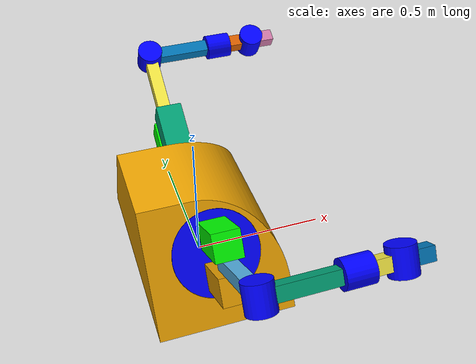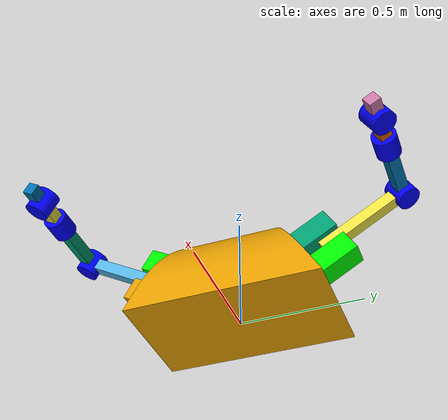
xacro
<?xml version="1.0"?>
<robot name="tutobot" xmlns:xacro="http://www.ros.org/wiki/xacro">

    <xacro:arg name="robot_namespace" default="tutobot"/>

    <link name="$(arg robot_namespace)/dual_base_link">
        <visual>
            <geometry>
                <mesh filename="package://udg_ros_intro/resources/meshes/dualbase.dae"/>
            </geometry>
        </visual>
        <collision>
            <geometry>
                <mesh filename="package://udg_ros_intro/resources/meshes/dualbase.dae"/>
            </geometry>
        </collision>
    </link>

    <!-- Include manipulator -->
    <xacro:include filename="$(find udg_ros_intro)/urdf/tutobot.macro.xacro"/>
    <xacro:arm_namespace prefix="$(arg robot_namespace)_left"/>
    <xacro:arm_namespace prefix="$(arg robot_namespace)_right"/>

    <joint name="$(arg robot_namespace)/fixed_joint_left" type="fixed">
        <parent link="$(arg robot_namespace)/dual_base_link"/>
        <child link="$(arg robot_namespace)_left/base_link"/>
        <origin rpy="-1.0472 0.0 0.0" xyz="0.0 0.18246 0.17679"/>
    </joint>

    <joint name="$(arg robot_namespace)/fixed_joint_right" type="fixed">
        <parent link="$(arg robot_namespace)/dual_base_link"/>
        <child link="$(arg robot_namespace)_right/base_link"/>
        <origin rpy="1.0472 0.0 0.0" xyz="0.0 -0.18246 0.17679"/>
    </joint>

</robot>

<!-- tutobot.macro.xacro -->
<robot xmlns:xacro="http://www.ros.org/wiki/xacro">

    <!-- define colors -->
    <material name="green">
        <color rgba="0 1.0 0 1"/>
    </material>

    <material name="blue">
        <color rgba="0 0 1 1"/>
    </material>

    <xacro:macro name="arm_namespace" params="prefix">

        <link name="${prefix}/base_link">
            <visual>
                <geometry>
                    <cylinder radius="0.16" length="0.1"/>
                </geometry>
                <material name="blue"/>
                <origin xyz="0 0 0.05" rpy="0 0 0"/>
            </visual>
            <collision>
                <geometry>
                    <cylinder radius="0.16" length="0.1"/>
                </geometry>
                <origin xyz="0 0 0.05" rpy="0 0 0"/>
            </collision>
        </link>

        <link name="${prefix}/link1">
            <visual name="left">
                <geometry>
                    <box size="0.1 0.1 0.2"/>
                </geometry>
                <material name="green"/>
                <origin xyz="0 0.075 0" rpy="0 0 0"/>
            </visual>

            <visual name="right">
                <geometry>
                    <box size="0.1 0.1 0.2"/>
                </geometry>
                <origin xyz="0 -0.075 0" rpy="0 0 0"/>
            </visual>

            <collision name="left">
                <geometry>
                    <box size="0.1 0.1 0.2"/>
                </geometry>
                <origin xyz="0 0.075 0" rpy="0 0 0"/>
            </collision>

            <collision name="right">
                <geometry>
                    <box size="0.1 0.1 0.2"/>
                </geometry>
                <origin xyz="0 -0.075 0" rpy="0 0 0"/>
            </collision>
        </link>

        <link name="${prefix}/link2">
            <visual name="bar">
                <geometry>
                    <box size="0.05 0.05 0.4"/>
                </geometry>
                <origin xyz="0.0 0 0.2" rpy="0 0 0"/>
            </visual>

            <collision name="bar">
                <geometry>
                    <box size="0.05 0.05 0.4"/>
                </geometry>
                <origin xyz="0.0 0 0.2" rpy="0 0 0"/>
            </collision>
        </link>

        <link name="${prefix}/link3">
            <visual name="bar">
                <geometry>
                    <box size="0.05 0.05 0.3"/>
                </geometry>
                <origin xyz="0.15 0 0" rpy="0 1.57 0"/>
            </visual>

            <visual name="motor">
                <geometry>
                    <cylinder radius="0.05" length="0.1"/>
                </geometry>
                <material name="blue"/>
                <origin xyz="0 0 0" rpy="1.57 0 0"/>
            </visual>

            <collision name="bar">
                <geometry>
                    <box size="0.05 0.05 0.3"/>
                </geometry>
                <origin xyz="0.15 0 0" rpy="0 1.57 0"/>
            </collision>

            <collision name="motor">
                <geometry>
                    <cylinder radius="0.05" length="0.1"/>
                </geometry>
                <origin xyz="0 0 0" rpy="1.57 0 0"/>
            </collision>
        </link>

        <link name="${prefix}/link4">
            <visual name="bar">
                <geometry>
                    <box size="0.05 0.05 0.15"/>
                </geometry>
                <origin xyz="0.075 0 0" rpy="0 1.57 0"/>
            </visual>

            <visual name="motor">
                <geometry>
                    <cylinder radius="0.05" length="0.1"/>
                </geometry>
                <material name="blue"/>
                <origin xyz="0 0 0" rpy="0 1.57 0"/>
            </visual>

            <collision name="bar">
                <geometry>
                    <box size="0.05 0.05 0.15"/>
                </geometry>
                <origin xyz="0.075 0 0" rpy="0 1.57 0"/>
            </collision>

            <collision name="motor">
                <geometry>
                    <cylinder radius="0.05" length="0.1"/>
                </geometry>
                <origin xyz="0 0 0" rpy="0 1.57 0"/>
            </collision>
        </link>

        <link name="${prefix}/link5">
            <visual name="bar">
                <geometry>
                    <box size="0.05 0.05 0.1"/>
                </geometry>
                <origin xyz="0.05 0 0" rpy="0 1.57 0"/>
            </visual>

            <visual name="motor">
                <geometry>
                    <cylinder radius="0.05" length="0.1"/>
                </geometry>
                <material name="blue"/>
                <origin xyz="0 0 0" rpy="1.57 0 0"/>
            </visual>

            <collision name="bar">
                <geometry>
                    <box size="0.05 0.05 0.1"/>
                </geometry>
                <origin xyz="0.05 0 0" rpy="0 1.57 0"/>
            </collision>

            <collision name="motor">
                <geometry>
                    <cylinder radius="0.05" length="0.1"/>
                </geometry>
                <material name="blue"/>
                <origin xyz="0 0 0" rpy="1.57 0 0"/>
            </collision>
        </link>

        <joint name="${prefix}/joint1" type="revolute">
            <parent link="${prefix}/base_link"/>
            <child link="${prefix}/link1"/>
            <origin xyz="0 0 0.2" rpy="0 0 0"/>
            <axis xyz="0 0 1"/>
            <limit lower="-3.1" upper="3.1" velocity="0.5" effort="1.0"/>
        </joint>

        <joint name="${prefix}/joint2" type="revolute">
            <parent link="${prefix}/link1"/>
            <child link="${prefix}/link2"/>
            <origin xyz="0 0 0" rpy="0 0 0"/>
            <axis xyz="0 1 0"/>
            <limit lower="-1.57" upper="1.57" velocity="0.5" effort="1.0"/>
        </joint>

        <joint name="${prefix}/joint3" type="revolute">
            <parent link="${prefix}/link2"/>
            <child link="${prefix}/link3"/>
            <origin xyz="0 0 0.4" rpy="0 0 0"/>
            <axis xyz="0 1 0"/>
            <limit lower="-1.57" upper="1.57" velocity="0.5" effort="1.0"/>
        </joint>

        <joint name="${prefix}/joint4" type="revolute">
            <parent link="${prefix}/link3"/>
            <child link="${prefix}/link4"/>
            <origin xyz="0.3 0 0" rpy="0 0 0"/>
            <axis xyz="1 0 0"/>
            <limit lower="-1.57" upper="1.57" velocity="0.5" effort="1.0"/>
        </joint>

        <joint name="${prefix}/joint5" type="revolute">
            <parent link="${prefix}/link4"/>
            <child link="${prefix}/link5"/>
            <origin xyz="0.15 0 0" rpy="0 0 0"/>
            <axis xyz="0 1 0"/>
            <limit lower="-1.57" upper="1.57" velocity="0.5" effort="1.0"/>
        </joint>

    </xacro:macro>
</robot>
